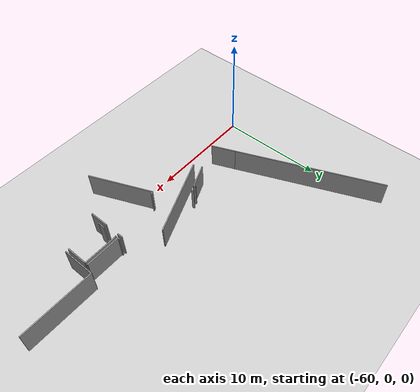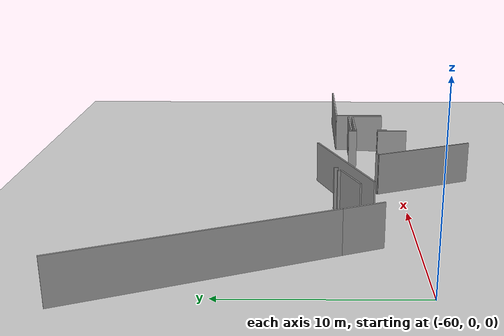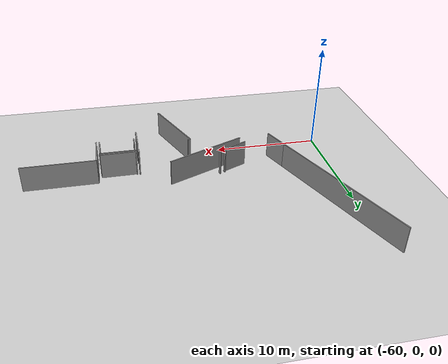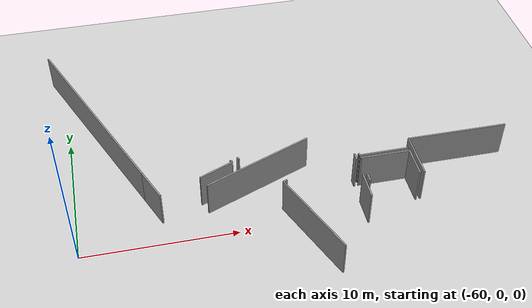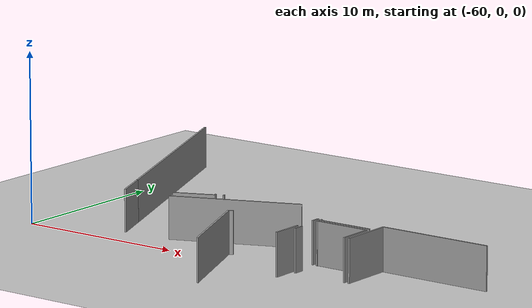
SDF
<sdf version="1.6">
 <world name="default">
  <model name="ground_plane">
   <static>1</static>
   <link name="link">
    <collision name="collision">
     <geometry><plane><normal>0 0 1</normal><size>100 100</size></plane></geometry>
     <surface><friction><ode><mu>100</mu><mu2>50</mu2></ode></friction></surface>
    </collision>
    <visual name="visual">
     <cast_shadows>0</cast_shadows>
     <geometry><plane><normal>0 0 1</normal><size>100 100</size></plane></geometry>
     <material>
      <script><uri>file://media/materials/scripts/gazebo.material</uri><name>Gazebo/Grey</name></script>
     </material>
    </visual>
   </link>
  </model>
  <model name="0510032194_A_40_1_202">
   <static>1</static>
   <link name="Wall_0">
    <collision name="Wall_0_Collision">
     <geometry><box><size>14.1942335276 0.1 2.5</size></box></geometry>
     <pose>7.0971167638 0 1.25 0 0 0</pose>
    </collision>
    <visual name="Wall_0_Visual">
     <pose>7.0971167638 0 1.25 0 0 0</pose>
     <geometry><box><size>14.1942335276 0.1 2.5</size></box></geometry>
     <material>
      <script><uri>file://media/materials/scripts/gazebo.material</uri><name>Gazebo/Grey</name></script>
      <ambient>1 1 1 1</ambient>
     </material>
    </visual>
    <pose>5.42216802891 -19.5301693753 0 0 0 1.96275355551</pose>
   </link>
   <link name="Wall_3">
    <collision name="Wall_3_Collision">
     <geometry><box><size>0.203462345677 0.1 2.5</size></box></geometry>
     <pose>0.101731172838 0 1.25 0 0 0</pose>
    </collision>
    <visual name="Wall_3_Visual">
     <pose>0.101731172838 0 1.25 0 0 0</pose>
     <geometry><box><size>0.203462345677 0.1 2.5</size></box></geometry>
     <material>
      <script><uri>file://media/materials/scripts/gazebo.material</uri><name>Gazebo/Grey</name></script>
      <ambient>1 1 1 1</ambient>
     </material>
    </visual>
    <pose>11.0682645226 -19.5207702225 0 0 0 -1.23423935203</pose>
   </link>
   <link name="Wall_4">
    <collision name="Wall_4_Collision">
     <geometry><box><size>2.41271808424 0.1 2.5</size></box></geometry>
     <pose>1.20635904212 0 1.25 0 0 0</pose>
    </collision>
    <visual name="Wall_4_Visual">
     <pose>1.20635904212 0 1.25 0 0 0</pose>
     <geometry><box><size>2.41271808424 0.1 2.5</size></box></geometry>
     <material>
      <script><uri>file://media/materials/scripts/gazebo.material</uri><name>Gazebo/Grey</name></script>
      <ambient>1 1 1 1</ambient>
     </material>
    </visual>
    <pose>11.1354557636 -19.7128177771 0 0 0 -2.73742668199</pose>
   </link>
   <link name="Wall_5">
    <collision name="Wall_5_Collision">
     <geometry><box><size>2.34947865103 0.1 2.5</size></box></geometry>
     <pose>1.17473932552 0 1.25 0 0 0</pose>
    </collision>
    <visual name="Wall_5_Visual">
     <pose>1.17473932552 0 1.25 0 0 0</pose>
     <geometry><box><size>2.34947865103 0.1 2.5</size></box></geometry>
     <material>
      <script><uri>file://media/materials/scripts/gazebo.material</uri><name>Gazebo/Grey</name></script>
      <ambient>1 1 1 1</ambient>
     </material>
    </visual>
    <pose>6.31280126508 -21.7042950318 0 0 0 1.95959493722</pose>
   </link>
   <link name="Wall_13">
    <collision name="Wall_13_Collision">
     <geometry><box><size>0.226324083436 0.1 2.5</size></box></geometry>
     <pose>0.113162041718 0 1.25 0 0 0</pose>
    </collision>
    <visual name="Wall_13_Visual">
     <pose>0.113162041718 0 1.25 0 0 0</pose>
     <geometry><box><size>0.226324083436 0.1 2.5</size></box></geometry>
     <material>
      <script><uri>file://media/materials/scripts/gazebo.material</uri><name>Gazebo/Grey</name></script>
      <ambient>1 1 1 1</ambient>
     </material>
    </visual>
    <pose>11.6162097281 -19.5469354316 0 0 0 1.96964544529</pose>
   </link>
   <link name="Wall_16">
    <collision name="Wall_16_Collision">
     <geometry><box><size>7.66933210681 0.1 2.5</size></box></geometry>
     <pose>3.8346660534 0 1.25 0 0 0</pose>
    </collision>
    <visual name="Wall_16_Visual">
     <pose>3.8346660534 0 1.25 0 0 0</pose>
     <geometry><box><size>7.66933210681 0.1 2.5</size></box></geometry>
     <material>
      <script><uri>file://media/materials/scripts/gazebo.material</uri><name>Gazebo/Grey</name></script>
      <ambient>1 1 1 1</ambient>
     </material>
    </visual>
    <pose>9.23962123955 -21.4392135195 0 0 0 0.389388225303</pose>
   </link>
   <link name="Wall_22">
    <collision name="Wall_22_Collision">
     <geometry><box><size>0.522923136523 0.1 2.5</size></box></geometry>
     <pose>0.261461568261 0 1.25 0 0 0</pose>
    </collision>
    <visual name="Wall_22_Visual">
     <pose>0.261461568261 0 1.25 0 0 0</pose>
     <geometry><box><size>0.522923136523 0.1 2.5</size></box></geometry>
     <material>
      <script><uri>file://media/materials/scripts/gazebo.material</uri><name>Gazebo/Grey</name></script>
      <ambient>1 1 1 1</ambient>
     </material>
    </visual>
    <pose>18.9773975778 -20.5976082967 0 0 0 -1.57079632679</pose>
   </link>
   <link name="Wall_23">
    <collision name="Wall_23_Collision">
     <geometry><box><size>1.87271768882 0.1 2.5</size></box></geometry>
     <pose>0.936358844412 0 1.25 0 0 0</pose>
    </collision>
    <visual name="Wall_23_Visual">
     <pose>0.936358844412 0 1.25 0 0 0</pose>
     <geometry><box><size>1.87271768882 0.1 2.5</size></box></geometry>
     <material>
      <script><uri>file://media/materials/scripts/gazebo.material</uri><name>Gazebo/Grey</name></script>
      <ambient>1 1 1 1</ambient>
     </material>
    </visual>
    <pose>18.9773975778 -22.4884892132 0 0 0 -1.57079632679</pose>
   </link>
   <link name="Wall_27">
    <collision name="Wall_27_Collision">
     <geometry><box><size>0.27505897297 0.1 2.5</size></box></geometry>
     <pose>0.137529486485 0 1.25 0 0 0</pose>
    </collision>
    <visual name="Wall_27_Visual">
     <pose>0.137529486485 0 1.25 0 0 0</pose>
     <geometry><box><size>0.27505897297 0.1 2.5</size></box></geometry>
     <material>
      <script><uri>file://media/materials/scripts/gazebo.material</uri><name>Gazebo/Grey</name></script>
      <ambient>1 1 1 1</ambient>
     </material>
    </visual>
    <pose>14.1991985317 -21.9697575908 0 0 0 -2.70892686345</pose>
   </link>
   <link name="Wall_28">
    <collision name="Wall_28_Collision">
     <geometry><box><size>6.25735483055 0.1 2.5</size></box></geometry>
     <pose>3.12867741527 0 1.25 0 0 0</pose>
    </collision>
    <visual name="Wall_28_Visual">
     <pose>3.12867741527 0 1.25 0 0 0</pose>
     <geometry><box><size>6.25735483055 0.1 2.5</size></box></geometry>
     <material>
      <script><uri>file://media/materials/scripts/gazebo.material</uri><name>Gazebo/Grey</name></script>
      <ambient>1 1 1 1</ambient>
     </material>
    </visual>
    <pose>13.9494859044 -22.085087736 0 0 0 -1.17855190415</pose>
   </link>
   <link name="Wall_35">
    <collision name="Wall_35_Collision">
     <geometry><box><size>0.174265373648 0.1 2.5</size></box></geometry>
     <pose>0.087132686824 0 1.25 0 0 0</pose>
    </collision>
    <visual name="Wall_35_Visual">
     <pose>0.087132686824 0 1.25 0 0 0</pose>
     <geometry><box><size>0.174265373648 0.1 2.5</size></box></geometry>
     <material>
      <script><uri>file://media/materials/scripts/gazebo.material</uri><name>Gazebo/Grey</name></script>
      <ambient>1 1 1 1</ambient>
     </material>
    </visual>
    <pose>19.2420980433 -20.7937203498 0 0 0 1.57079632679</pose>
   </link>
   <link name="Wall_39">
    <collision name="Wall_39_Collision">
     <geometry><box><size>3.28314148204 0.1 2.5</size></box></geometry>
     <pose>1.64157074102 0 1.25 0 0 0</pose>
    </collision>
    <visual name="Wall_39_Visual">
     <pose>1.64157074102 0 1.25 0 0 0</pose>
     <geometry><box><size>3.28314148204 0.1 2.5</size></box></geometry>
     <material>
      <script><uri>file://media/materials/scripts/gazebo.material</uri><name>Gazebo/Grey</name></script>
      <ambient>1 1 1 1</ambient>
     </material>
    </visual>
    <pose>22.5251967154 -20.7769542934 0 0 0 -3.1364859199</pose>
   </link>
   <link name="Wall_40">
    <collision name="Wall_40_Collision">
     <geometry><box><size>0.624535599291 0.1 2.5</size></box></geometry>
     <pose>0.312267799646 0 1.25 0 0 0</pose>
    </collision>
    <visual name="Wall_40_Visual">
     <pose>0.312267799646 0 1.25 0 0 0</pose>
     <geometry><box><size>0.624535599291 0.1 2.5</size></box></geometry>
     <material>
      <script><uri>file://media/materials/scripts/gazebo.material</uri><name>Gazebo/Grey</name></script>
      <ambient>1 1 1 1</ambient>
     </material>
    </visual>
    <pose>19.2638177072 -23.0958777094 0 0 0 1.57079632679</pose>
   </link>
   <link name="Wall_41">
    <collision name="Wall_41_Collision">
     <geometry><box><size>0.0798927988518 0.1 2.5</size></box></geometry>
     <pose>0.0399463994259 0 1.25 0 0 0</pose>
    </collision>
    <visual name="Wall_41_Visual">
     <pose>0.0399463994259 0 1.25 0 0 0</pose>
     <geometry><box><size>0.0798927988518 0.1 2.5</size></box></geometry>
     <material>
      <script><uri>file://media/materials/scripts/gazebo.material</uri><name>Gazebo/Grey</name></script>
      <ambient>1 1 1 1</ambient>
     </material>
    </visual>
    <pose>19.2638177072 -21.1277713212 0 0 0 1.57079632679</pose>
   </link>
   <link name="Wall_42">
    <collision name="Wall_42_Collision">
     <geometry><box><size>3.26976203631 0.1 2.5</size></box></geometry>
     <pose>1.63488101816 0 1.25 0 0 0</pose>
    </collision>
    <visual name="Wall_42_Visual">
     <pose>1.63488101816 0 1.25 0 0 0</pose>
     <geometry><box><size>3.26976203631 0.1 2.5</size></box></geometry>
     <material>
      <script><uri>file://media/materials/scripts/gazebo.material</uri><name>Gazebo/Grey</name></script>
      <ambient>1 1 1 1</ambient>
     </material>
    </visual>
    <pose>19.2638177072 -21.0478785223 0 0 0 0.0</pose>
   </link>
   <link name="Wall_43">
    <collision name="Wall_43_Collision">
     <geometry><box><size>2.05231771677 0.1 2.5</size></box></geometry>
     <pose>1.02615885838 0 1.25 0 0 0</pose>
    </collision>
    <visual name="Wall_43_Visual">
     <pose>1.02615885838 0 1.25 0 0 0</pose>
     <geometry><box><size>2.05231771677 0.1 2.5</size></box></geometry>
     <material>
      <script><uri>file://media/materials/scripts/gazebo.material</uri><name>Gazebo/Grey</name></script>
      <ambient>1 1 1 1</ambient>
     </material>
    </visual>
    <pose>22.5335797436 -21.0478785223 0 0 0 -1.57079632679</pose>
   </link>
   <link name="Wall_73">
    <collision name="Wall_73_Collision">
     <geometry><box><size>3.13664971009 0.1 2.5</size></box></geometry>
     <pose>1.56832485504 0 1.25 0 0 0</pose>
    </collision>
    <visual name="Wall_73_Visual">
     <pose>1.56832485504 0 1.25 0 0 0</pose>
     <geometry><box><size>3.13664971009 0.1 2.5</size></box></geometry>
     <material>
      <script><uri>file://media/materials/scripts/gazebo.material</uri><name>Gazebo/Grey</name></script>
      <ambient>1 1 1 1</ambient>
     </material>
    </visual>
    <pose>22.8358768203 -23.0848273541 0 0 0 1.57079632679</pose>
   </link>
   <link name="Wall_74">
    <collision name="Wall_74_Collision">
     <geometry><box><size>6.74833768362 0.1 2.5</size></box></geometry>
     <pose>3.37416884181 0 1.25 0 0 0</pose>
    </collision>
    <visual name="Wall_74_Visual">
     <pose>3.37416884181 0 1.25 0 0 0</pose>
     <geometry><box><size>6.74833768362 0.1 2.5</size></box></geometry>
     <material>
      <script><uri>file://media/materials/scripts/gazebo.material</uri><name>Gazebo/Grey</name></script>
      <ambient>1 1 1 1</ambient>
     </material>
    </visual>
    <pose>22.8358768203 -19.948177644 0 0 0 0.0</pose>
   </link>
   <pose>-60.9 23.465744216 0 0 0 0</pose>
  </model>
 </world>
</sdf>
